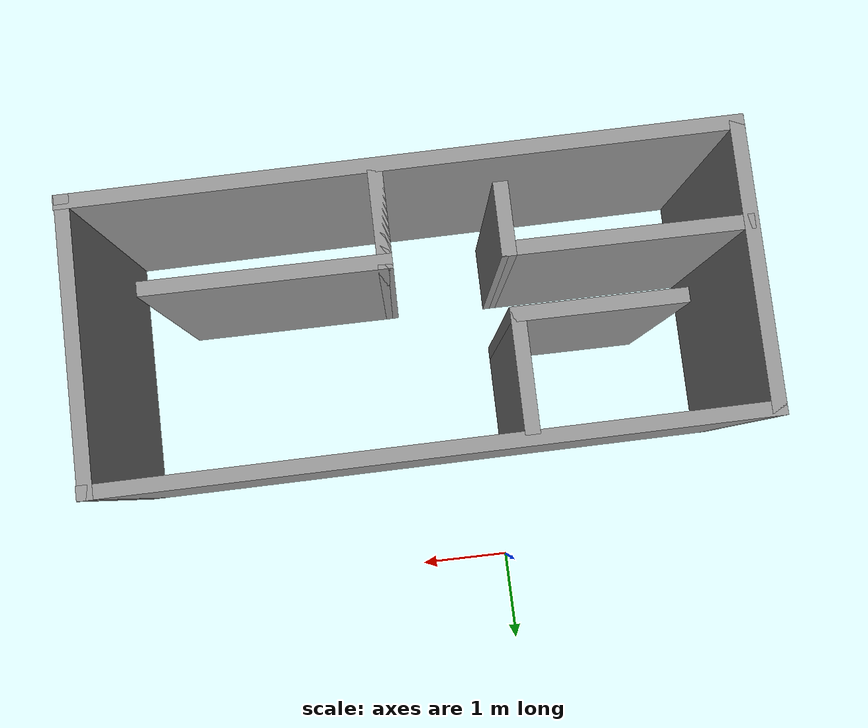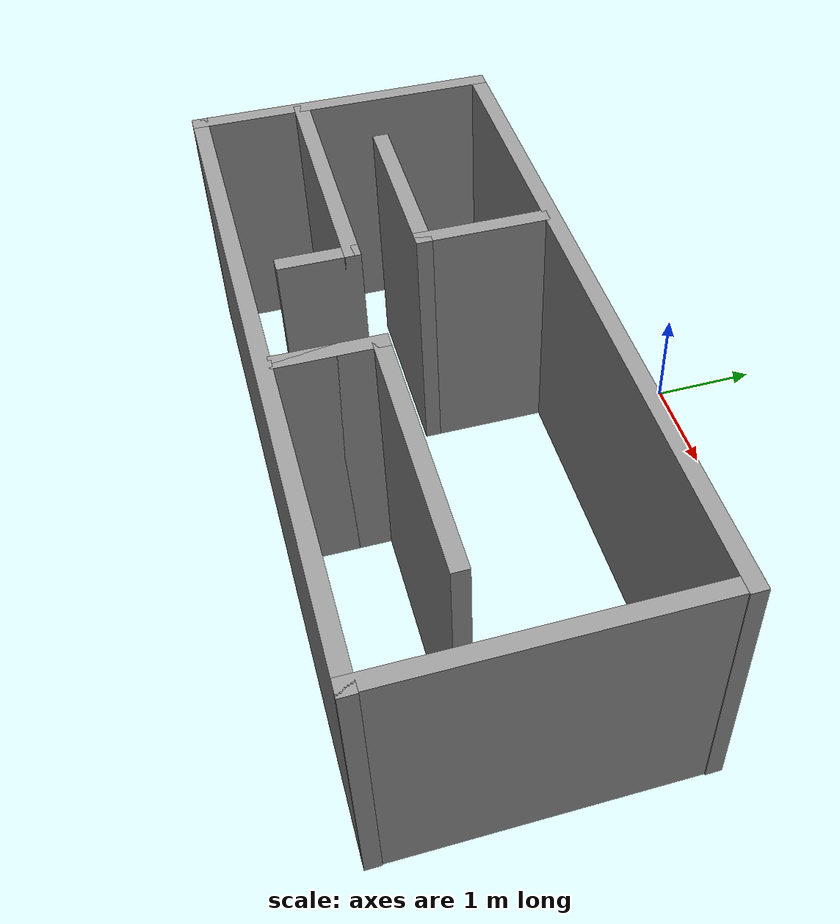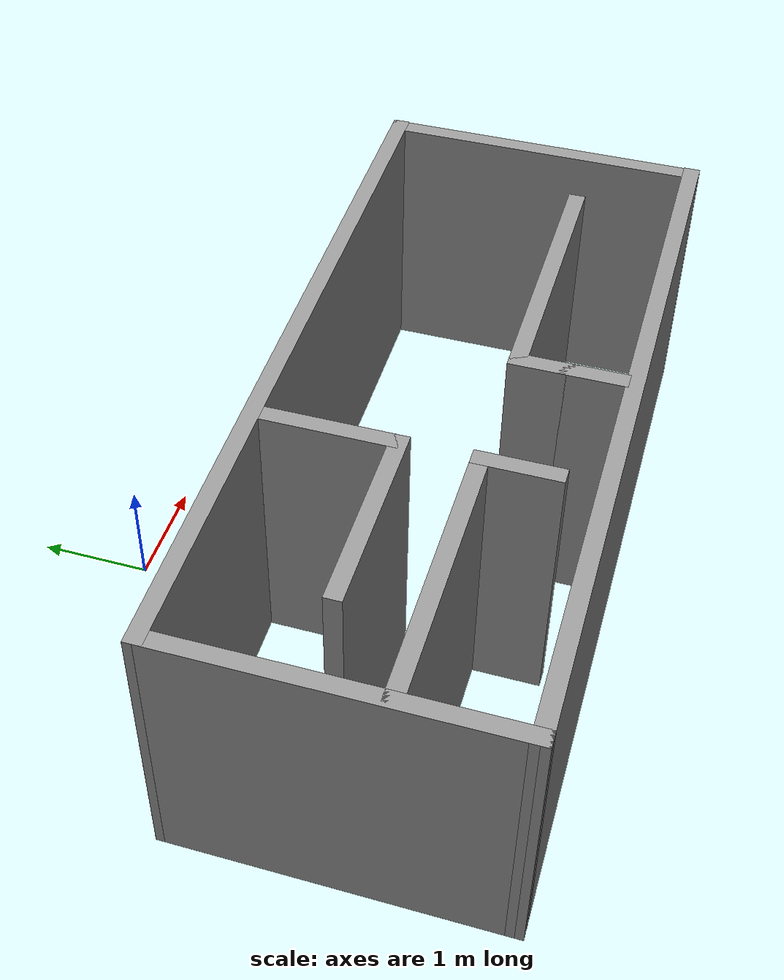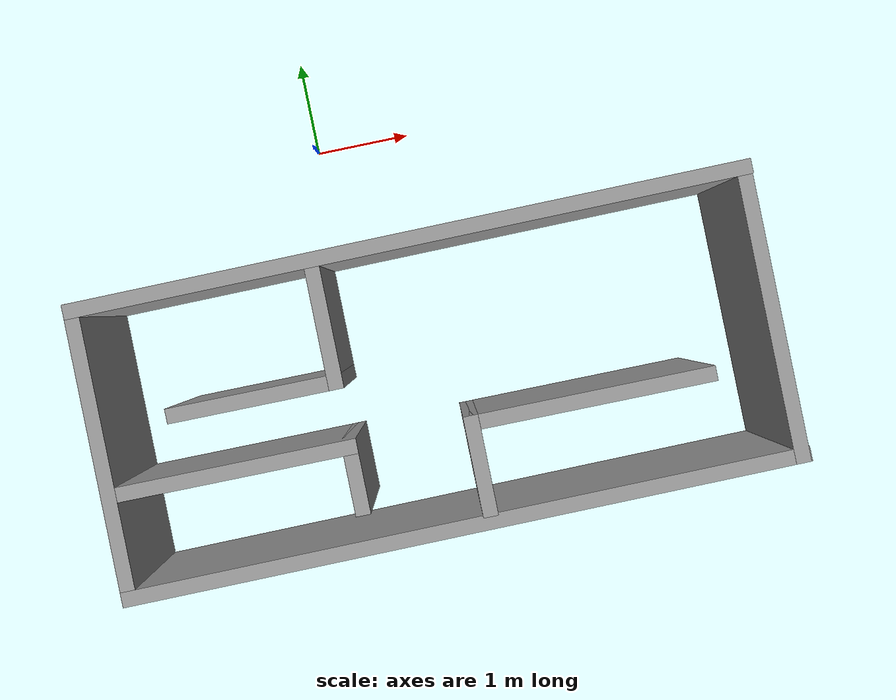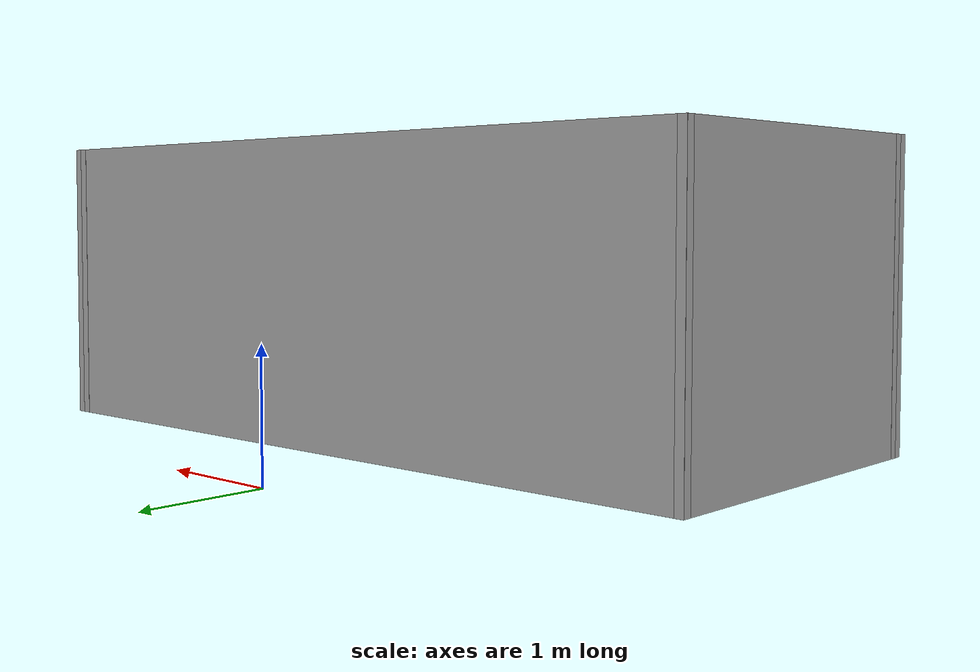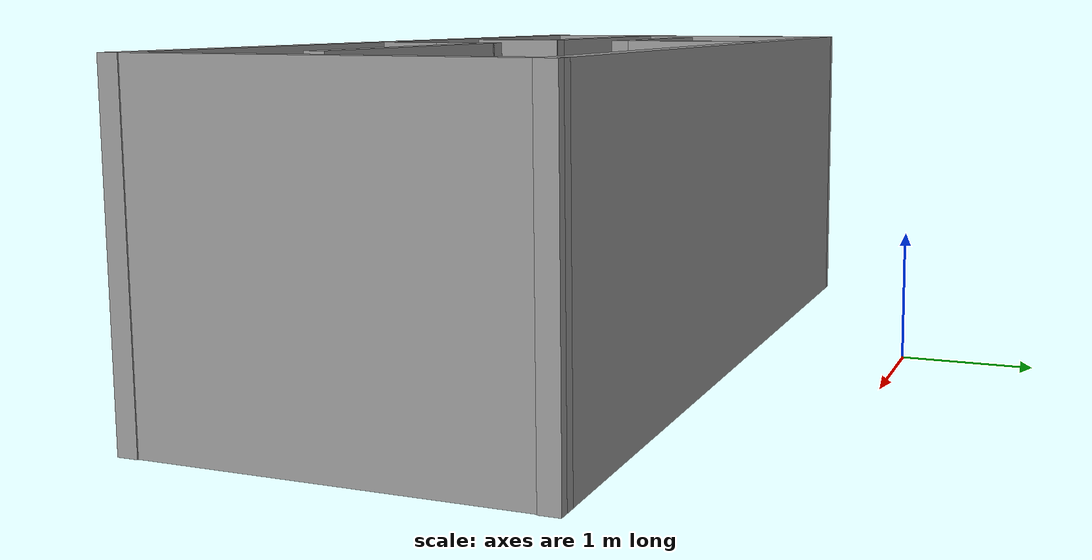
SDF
<?xml version='1.0'?>
<sdf version='1.7'>
  <model name='room2'>
    <pose>0.795 -2.09778 0 0 -0 0</pose>
    <link name='Wall_0'>
      <collision name='Wall_0_Collision'>
        <geometry>
          <box>
            <size>6.84019 0.15 2.5</size>
          </box>
        </geometry>
        <pose>0 0 1.25 0 -0 0</pose>
      </collision>
      <visual name='Wall_0_Visual'>
        <pose>0 0 1.25 0 -0 0</pose>
        <geometry>
          <box>
            <size>6.84019 0.15 2.5</size>
          </box>
        </geometry>
        <material>
          <script>
            <uri>file://media/materials/scripts/gazebo.material</uri>
            <name>Gazebo/Grey</name>
          </script>
          <ambient>1 1 1 1</ambient>
        </material>
        <meta>
          <layer>0</layer>
        </meta>
      </visual>
      <pose>0 0.852779 0 0 -0 0.007474</pose>
    </link>
    <link name='Wall_1'>
      <collision name='Wall_1_Collision'>
        <geometry>
          <box>
            <size>3 0.15 2.5</size>
          </box>
        </geometry>
        <pose>0 0 1.25 0 -0 0</pose>
      </collision>
      <visual name='Wall_1_Visual'>
        <pose>0 0 1.25 0 -0 0</pose>
        <geometry>
          <box>
            <size>3 0.15 2.5</size>
          </box>
        </geometry>
        <material>
          <script>
            <uri>file://media/materials/scripts/gazebo.material</uri>
            <name>Gazebo/Grey</name>
          </script>
          <ambient>1 1 1 1</ambient>
        </material>
        <meta>
          <layer>0</layer>
        </meta>
      </visual>
      <pose>3.335 -0.547221 0 0 -0 -1.5708</pose>
    </link>
    <link name='Wall_14'>
      <collision name='Wall_14_Collision'>
        <geometry>
          <box>
            <size>1 0.15 2.5</size>
          </box>
        </geometry>
        <pose>0 0 1.25 0 -0 0</pose>
      </collision>
      <visual name='Wall_14_Visual'>
        <pose>0 0 1.25 0 -0 0</pose>
        <geometry>
          <box>
            <size>1 0.15 2.5</size>
          </box>
        </geometry>
        <material>
          <script>
            <uri>file://media/materials/scripts/gazebo.material</uri>
            <name>Gazebo/Grey</name>
          </script>
          <ambient>1 1 1 1</ambient>
        </material>
        <meta>
          <layer>0</layer>
        </meta>
      </visual>
      <pose>0.255 -1.44722 0 0 -0 -1.5708</pose>
    </link>
    <link name='Wall_15'>
      <collision name='Wall_15_Collision'>
        <geometry>
          <box>
            <size>1 0.15 2.5</size>
          </box>
        </geometry>
        <pose>0 0 1.25 0 -0 0</pose>
      </collision>
      <visual name='Wall_15_Visual'>
        <pose>0 0 1.25 0 -0 0</pose>
        <geometry>
          <box>
            <size>1 0.15 2.5</size>
          </box>
        </geometry>
        <material>
          <script>
            <uri>file://media/materials/scripts/gazebo.material</uri>
            <name>Gazebo/Grey</name>
          </script>
          <ambient>1 1 1 1</ambient>
        </material>
        <meta>
          <layer>0</layer>
        </meta>
      </visual>
      <pose>0.255 -1.44722 0 0 -0 1.5708</pose>
    </link>
    <link name='Wall_17'>
      <collision name='Wall_17_Collision'>
        <geometry>
          <box>
            <size>2.5 0.15 2.5</size>
          </box>
        </geometry>
        <pose>0 0 1.25 0 -0 0</pose>
      </collision>
      <visual name='Wall_17_Visual'>
        <pose>0 0 1.25 0 -0 0</pose>
        <geometry>
          <box>
            <size>2.5 0.15 2.5</size>
          </box>
        </geometry>
        <material>
          <script>
            <uri>file://media/materials/scripts/gazebo.material</uri>
            <name>Gazebo/Grey</name>
          </script>
          <ambient>1 1 1 1</ambient>
        </material>
        <meta>
          <layer>0</layer>
        </meta>
      </visual>
      <pose>1.43 -1.02222 0 0 -0 0</pose>
    </link>
    <link name='Wall_2'>
      <collision name='Wall_2_Collision'>
        <geometry>
          <box>
            <size>6.84019 0.15 2.5</size>
          </box>
        </geometry>
        <pose>0 0 1.25 0 -0 0</pose>
      </collision>
      <visual name='Wall_2_Visual'>
        <pose>0 0 1.25 0 -0 0</pose>
        <geometry>
          <box>
            <size>6.84019 0.15 2.5</size>
          </box>
        </geometry>
        <material>
          <script>
            <uri>file://media/materials/scripts/gazebo.material</uri>
            <name>Gazebo/Grey</name>
          </script>
          <ambient>1 1 1 1</ambient>
        </material>
        <meta>
          <layer>0</layer>
        </meta>
      </visual>
      <pose>0 -1.99722 0 0 -0 -3.13412</pose>
    </link>
    <link name='Wall_3'>
      <collision name='Wall_3_Collision'>
        <geometry>
          <box>
            <size>3 0.15 2.5</size>
          </box>
        </geometry>
        <pose>0 0 1.25 0 -0 0</pose>
      </collision>
      <visual name='Wall_3_Visual'>
        <pose>0 0 1.25 0 -0 0</pose>
        <geometry>
          <box>
            <size>3 0.15 2.5</size>
          </box>
        </geometry>
        <material>
          <script>
            <uri>file://media/materials/scripts/gazebo.material</uri>
            <name>Gazebo/Grey</name>
          </script>
          <ambient>1 1 1 1</ambient>
        </material>
        <meta>
          <layer>0</layer>
        </meta>
      </visual>
      <pose>-3.345 -0.597221 0 0 -0 1.5708</pose>
    </link>
    <link name='Wall_5'>
      <collision name='Wall_5_Collision'>
        <geometry>
          <box>
            <size>1.25 0.15 2.5</size>
          </box>
        </geometry>
        <pose>0 0 1.25 0 -0 0</pose>
      </collision>
      <visual name='Wall_5_Visual'>
        <pose>0 0 1.25 0 -0 0</pose>
        <geometry>
          <box>
            <size>1.25 0.15 2.5</size>
          </box>
        </geometry>
        <material>
          <script>
            <uri>file://media/materials/scripts/gazebo.material</uri>
            <name>Gazebo/Grey</name>
          </script>
          <ambient>1 1 1 1</ambient>
        </material>
        <meta>
          <layer>0</layer>
        </meta>
      </visual>
      <pose>-0.965 0.187779 0 0 -0 -1.5708</pose>
    </link>
    <link name='Wall_6'>
      <collision name='Wall_6_Collision'>
        <geometry>
          <box>
            <size>1.75 0.15 2.5</size>
          </box>
        </geometry>
        <pose>0 0 1.25 0 -0 0</pose>
      </collision>
      <visual name='Wall_6_Visual'>
        <pose>0 0 1.25 0 -0 0</pose>
        <geometry>
          <box>
            <size>1.75 0.15 2.5</size>
          </box>
        </geometry>
        <material>
          <script>
            <uri>file://media/materials/scripts/gazebo.material</uri>
            <name>Gazebo/Grey</name>
          </script>
          <ambient>1 1 1 1</ambient>
        </material>
        <meta>
          <layer>0</layer>
        </meta>
      </visual>
      <pose>-1.765 -0.362221 0 0 -0 3.14159</pose>
    </link>
    <link name='Wall_8'>
      <collision name='Wall_8_Collision'>
        <geometry>
          <box>
            <size>2.5 0.15 2.5</size>
          </box>
        </geometry>
        <pose>0 0 1.25 0 -0 0</pose>
      </collision>
      <visual name='Wall_8_Visual'>
        <pose>0 0 1.25 0 -0 0</pose>
        <geometry>
          <box>
            <size>2.5 0.15 2.5</size>
          </box>
        </geometry>
        <material>
          <script>
            <uri>file://media/materials/scripts/gazebo.material</uri>
            <name>Gazebo/Grey</name>
          </script>
          <ambient>1 1 1 1</ambient>
        </material>
        <meta>
          <layer>0</layer>
        </meta>
      </visual>
      <pose>-2.13 -1.01222 0 0 -0 0</pose>
    </link>
    <link name='Wall_9'>
      <collision name='Wall_9_Collision'>
        <geometry>
          <box>
            <size>0.75 0.15 2.5</size>
          </box>
        </geometry>
        <pose>0 0 1.25 0 -0 0</pose>
      </collision>
      <visual name='Wall_9_Visual'>
        <pose>0 0 1.25 0 -0 0</pose>
        <geometry>
          <box>
            <size>0.75 0.15 2.5</size>
          </box>
        </geometry>
        <material>
          <script>
            <uri>file://media/materials/scripts/gazebo.material</uri>
            <name>Gazebo/Grey</name>
          </script>
          <ambient>1 1 1 1</ambient>
        </material>
        <meta>
          <layer>0</layer>
        </meta>
      </visual>
      <pose>-0.955 -1.31222 0 0 -0 -1.5708</pose>
    </link>
    <static>1</static>
  </model>
</sdf>
